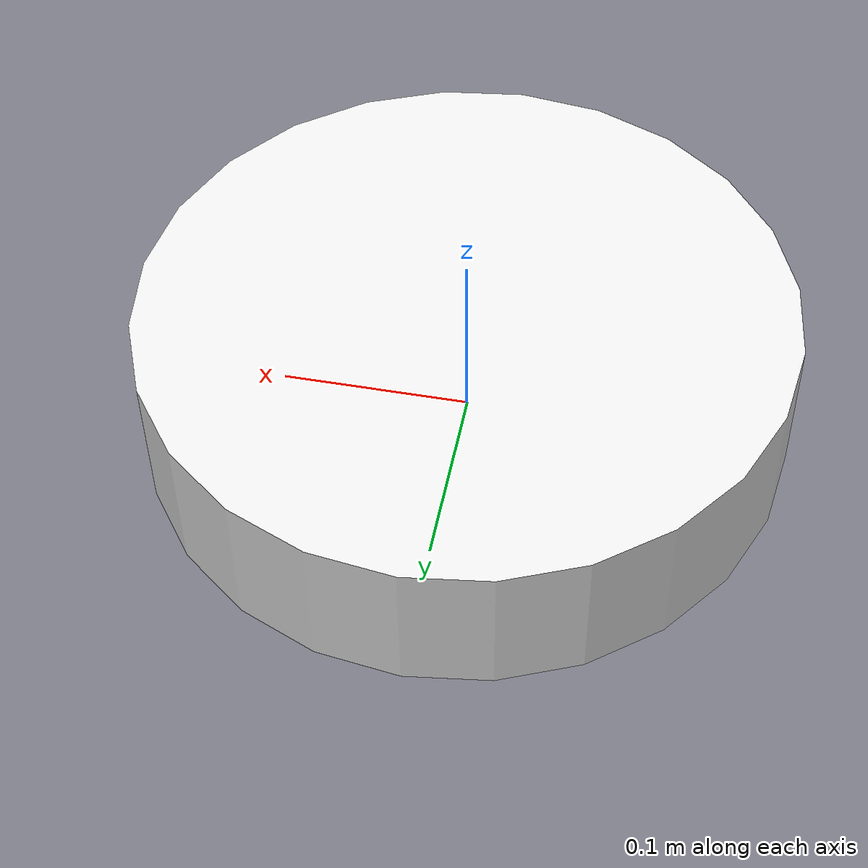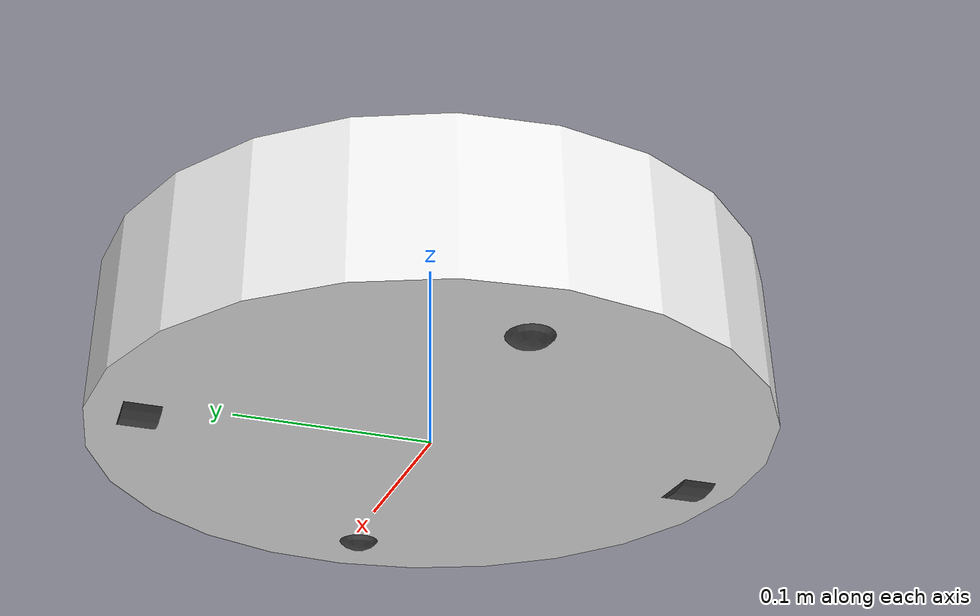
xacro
<?xml version="1.0"?>
<robot xmlns:xacro="http://www.ros.org/wiki/xacro">
  <xacro:property name="base_radius" value="0.17"/>
  <xacro:property name="base_height" value="0.08"/>
  <xacro:property name="base_mass" value="3.0"/>

  <xacro:property name="wheel_radius" value="0.033"/>
  <xacro:property name="wheel_width" value="0.018"/>
  <xacro:property name="wheel_mass" value="0.1"/>
  <xacro:property name="wheel_offset_y" value="0.144"/>
  <xacro:property name="wheel_offset_z" value="-0.01"/>

  <xacro:property name="caster_radius" value="0.015"/>
  <xacro:property name="caster_mass" value="0.05"/>

  <xacro:macro name="cylinder_inertia" params="m r h">
    <inertial>
      <mass value="${m}"/>
      <inertia ixx="${m * (3 * r * r + h * h) / 12}" ixy="0" ixz="0"
               iyy="${m * (3 * r * r + h * h) / 12}" iyz="0"
               izz="${m * r * r / 2}"/>
    </inertial>
  </xacro:macro>

  <xacro:macro name="sphere_inertia" params="m r">
    <inertial>
      <mass value="${m}"/>
      <inertia ixx="${2 * m * r * r / 5}" ixy="0" ixz="0"
               iyy="${2 * m * r * r / 5}" iyz="0"
               izz="${2 * m * r * r / 5}"/>
    </inertial>
  </xacro:macro>

  <link name="base_footprint"/>

  <joint name="base_footprint_joint" type="fixed">
    <parent link="base_footprint"/>
    <child link="base_link"/>
    <origin xyz="0 0 ${wheel_radius}" rpy="0 0 0"/>
  </joint>

  <link name="base_link">
    <visual>
      <geometry>
        <cylinder radius="${base_radius}" length="${base_height}"/>
      </geometry>
      <material name="white"/>
    </visual>
    <collision>
      <geometry>
        <cylinder radius="${base_radius}" length="${base_height}"/>
      </geometry>
    </collision>
    <xacro:cylinder_inertia m="${base_mass}" r="${base_radius}" h="${base_height}"/>
  </link>

  <xacro:macro name="wheel" params="name y_sign">
    <link name="${name}_wheel_link">
      <visual>
        <geometry>
          <cylinder radius="${wheel_radius}" length="${wheel_width}"/>
        </geometry>
        <origin xyz="0 0 0" rpy="${pi / 2} 0 0"/>
        <material name="dark_grey"/>
      </visual>
      <collision>
        <geometry>
          <cylinder radius="${wheel_radius}" length="${wheel_width}"/>
        </geometry>
        <origin xyz="0 0 0" rpy="${pi / 2} 0 0"/>
      </collision>
      <xacro:cylinder_inertia m="${wheel_mass}" r="${wheel_radius}" h="${wheel_width}"/>
    </link>

    <joint name="${name}_wheel_joint" type="continuous">
      <parent link="base_link"/>
      <child link="${name}_wheel_link"/>
      <origin xyz="0 ${y_sign * wheel_offset_y} ${wheel_offset_z}" rpy="0 0 0"/>
      <axis xyz="0 1 0"/>
    </joint>
  </xacro:macro>

  <xacro:wheel name="left" y_sign="1"/>
  <xacro:wheel name="right" y_sign="-1"/>

  <xacro:macro name="caster" params="name x_pos">
    <link name="${name}_caster_link">
      <visual>
        <geometry>
          <sphere radius="${caster_radius}"/>
        </geometry>
        <material name="dark_grey"/>
      </visual>
      <collision>
        <geometry>
          <sphere radius="${caster_radius}"/>
        </geometry>
      </collision>
      <xacro:sphere_inertia m="${caster_mass}" r="${caster_radius}"/>
    </link>

    <joint name="${name}_caster_joint" type="fixed">
      <parent link="base_link"/>
      <child link="${name}_caster_link"/>
      <origin xyz="${x_pos} 0 ${-base_height / 2 + caster_radius - 0.005}" rpy="0 0 0"/>
    </joint>
  </xacro:macro>

  <xacro:caster name="front" x_pos="0.13"/>
  <xacro:caster name="rear" x_pos="-0.13"/>

  <gazebo reference="base_link">
    <material>Gazebo/White</material>
    <mu1>0.2</mu1>
    <mu2>0.2</mu2>
  </gazebo>

  <gazebo reference="left_wheel_link">
    <material>Gazebo/DarkGrey</material>
    <mu1>2.0</mu1>
    <mu2>2.0</mu2>
  </gazebo>

  <gazebo reference="right_wheel_link">
    <material>Gazebo/DarkGrey</material>
    <mu1>2.0</mu1>
    <mu2>2.0</mu2>
  </gazebo>

  <gazebo reference="front_caster_link">
    <material>Gazebo/DarkGrey</material>
    <mu1>0.0</mu1>
    <mu2>0.0</mu2>
  </gazebo>

  <gazebo reference="rear_caster_link">
    <material>Gazebo/DarkGrey</material>
    <mu1>0.0</mu1>
    <mu2>0.0</mu2>
  </gazebo>
</robot>
